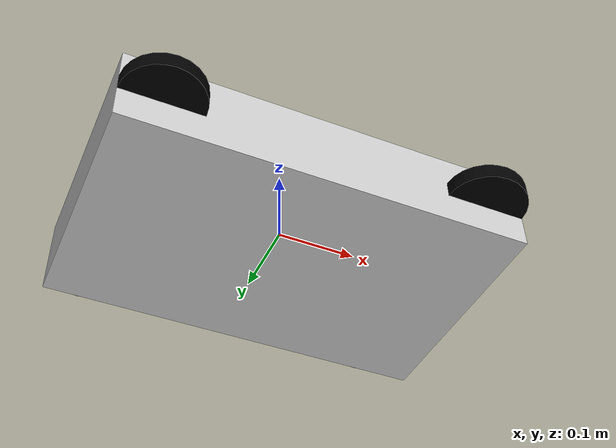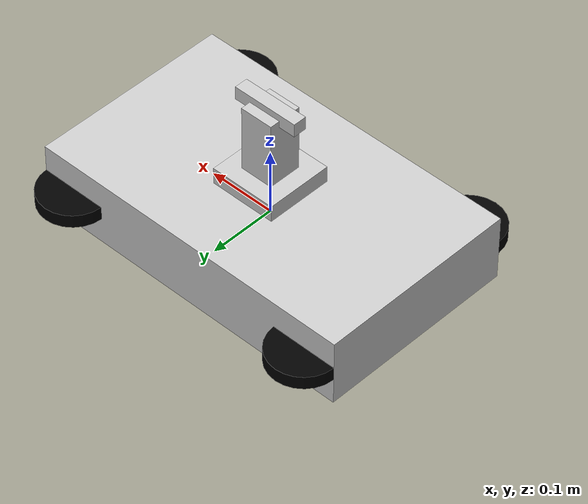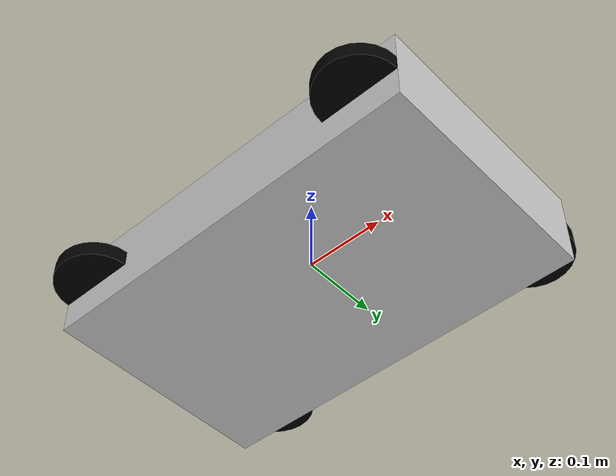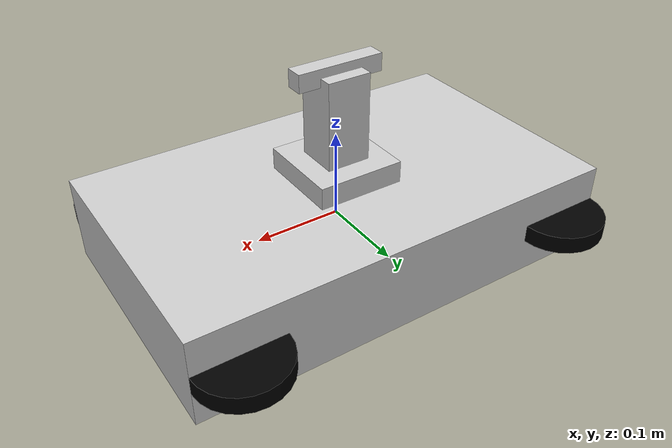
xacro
<?xml version="1.0"?>
<robot xmlns:xacro="http://www.ros.org/wiki/xacro" name="four_wheel_robot">
  <!-- Base Link -->
  <link name="base_link">
    <visual>
      <geometry>
        <box size="0.5 0.3 0.1"/> <!-- Adjust dimensions as needed -->
      </geometry>
      <material>
        <color rgba="0.8 0.8 0.8 1.0"/>
      </material>
    </visual>
    <collision>
      <geometry>
        <box size="0.5 0.3 0.1"/> <!-- Adjust dimensions as needed -->
      </geometry>
    </collision>
    <inertial>
      <mass value="10.0"/>
      <origin xyz="0 0 0" rpy="0 0 0"/>
      <inertia ixx="0.1" ixy="0.0" ixz="0.0" iyy="0.1" iyz="0.0" izz="0.1"/>
    </inertial>
  </link>

  <!-- Wheels -->
  <xacro:macro name="wheel" params="name x y z">
    <link name="${name}">
      <visual>
        <geometry>
          <cylinder radius="0.05" length="0.02"/> <!-- Adjust dimensions as needed -->
        </geometry>
        <material>
          <color rgba="0.0 0.0 0.0 1.0"/>
        </material>
      </visual>
      <collision>
        <geometry>
          <cylinder radius="0.05" length="0.02"/> <!-- Adjust dimensions as needed -->
        </geometry>
      </collision>
      <inertial>
        <mass value="1.0"/>
        <origin xyz="0 0 0" rpy="0 0 0"/>
        <inertia ixx="0.01" ixy="0.0" ixz="0.0" iyy="0.01" iyz="0.0" izz="0.01"/>
      </inertial>
    </link>
    <joint name="${name}_joint" type="revolute">
      <parent link="base_link"/>
      <child link="${name}"/>
      <origin xyz="${x} ${y} ${z}" rpy="0 0 0"/>
      <axis xyz="0 1 0"/>
      <limit effort="1000.0" lower="0" upper="0" velocity="0"/>
      <dynamics damping="0.0" friction="0.0"/>
    </joint>
  </xacro:macro>

  <!-- Four Wheels -->
  <xacro:wheel name="wheel_front_left" x="0.2" y="0.15" z="0"/>
  <xacro:wheel name="wheel_front_right" x="0.2" y="-0.15" z="0"/>
  <xacro:wheel name="wheel_back_left" x="-0.2" y="0.15" z="0"/>
  <xacro:wheel name="wheel_back_right" x="-0.2" y="-0.15" z="0"/>

  <!-- Robotic Arm Base -->
  <link name="arm_base">
    <visual>
      <geometry>
        <box size="0.1 0.1 0.05"/> <!-- Adjust dimensions as needed -->
      </geometry>
      <material>
        <color rgba="0.8 0.8 0.8 1.0"/>
      </material>
    </visual>
    <collision>
      <geometry>
        <box size="0.1 0.1 0.05"/> <!-- Adjust dimensions as needed -->
      </geometry>
    </collision>
    <inertial>
      <mass value="2.0"/>
      <origin xyz="0 0 0" rpy="0 0 0"/>
      <inertia ixx="0.02" ixy="0.0" ixz="0.0" iyy="0.02" iyz="0.0" izz="0.02"/>
    </inertial>
  </link>
  <joint name="arm_base_joint" type="revolute">
    <parent link="base_link"/>
    <child link="arm_base"/>
    <origin xyz="0 0 0.05" rpy="0 0 0"/>
    <axis xyz="0 0 1"/>
    <limit effort="1000.0" lower="-3.14" upper="3.14" velocity="1.0"/>
    <dynamics damping="0.0" friction="0.0"/>
  </joint>

  <!-- Telescopic Arm -->
  <link name="telescopic_arm">
    <visual>
      <geometry>
        <box size="0.05 0.05 0.2"/> <!-- Adjust dimensions as needed -->
      </geometry>
      <material>
        <color rgba="0.8 0.8 0.8 1.0"/>
      </material>
    </visual>
    <collision>
      <geometry>
        <box size="0.05 0.05 0.2"/> <!-- Adjust dimensions as needed -->
      </geometry>
    </collision>
    <inertial>
      <mass value="1.0"/>
      <origin xyz="0 0 0" rpy="0 0 0"/>
      <inertia ixx="0.01" ixy="0.0" ixz="0.0" iyy="0.01" iyz="0.0" izz="0.01"/>
    </inertial>
  </link>
  <joint name="telescopic_arm_joint" type="prismatic">
    <parent link="arm_base"/>
    <child link="telescopic_arm"/>
    <origin xyz="0 0 0.025" rpy="0 0 0"/>
    <axis xyz="0 0 1"/>
    <limit effort="1000.0" lower="0" upper="0.5" velocity="0.1"/>
    <dynamics damping="0.0" friction="0.0"/>
  </joint>

  <!-- Gripper -->
  <link name="gripper">
    <visual>
      <geometry>
        <box size="0.1 0.02 0.02"/> <!-- Adjust dimensions as needed -->
      </geometry>
      <material>
        <color rgba="0.8 0.8 0.8 1.0"/>
      </material>
    </visual>
    <collision>
      <geometry>
        <box size="0.1 0.02 0.02"/> <!-- Adjust dimensions as needed -->
      </geometry>
    </collision>
    <inertial>
      <mass value="0.5"/>
      <origin xyz="0 0 0" rpy="0 0 0"/>
      <inertia ixx="0.005" ixy="0.0" ixz="0.0" iyy="0.005" iyz="0.0" izz="0.005"/>
    </inertial>
  </link>
  <joint name="gripper_joint" type="revolute">
    <parent link="telescopic_arm"/>
    <child link="gripper"/>
    <origin xyz="0 0 0.1" rpy="0 0 0"/>
    <axis xyz="0 1 0"/>
    <limit effort="1000.0" lower="-0.5" upper="0.5" velocity="1.0"/>
    <dynamics damping="0.0" friction="0.0"/>
  </joint>
</robot>
